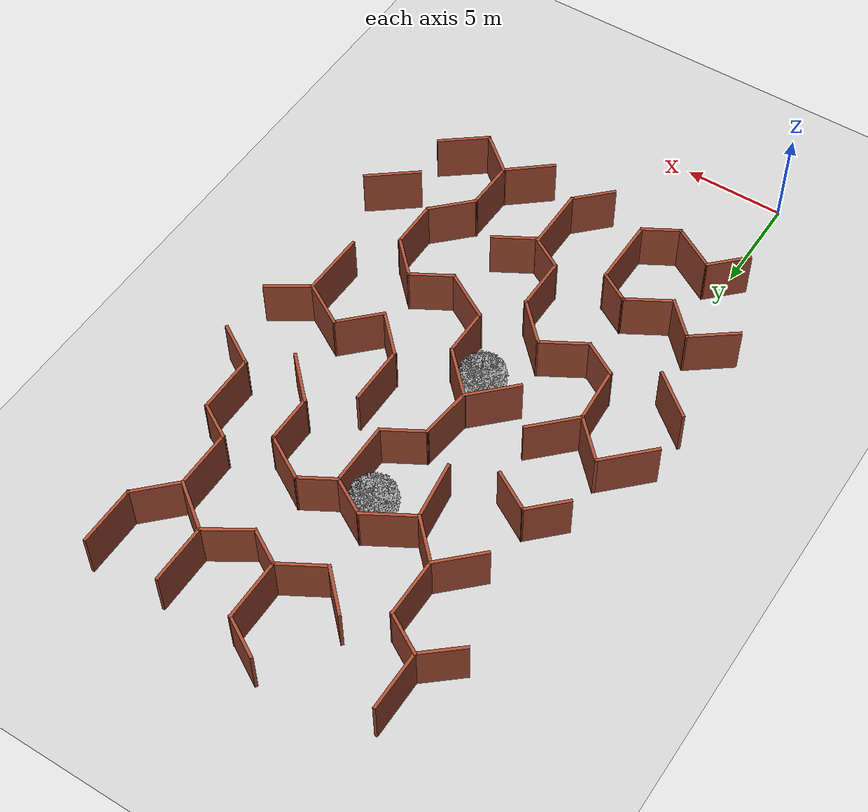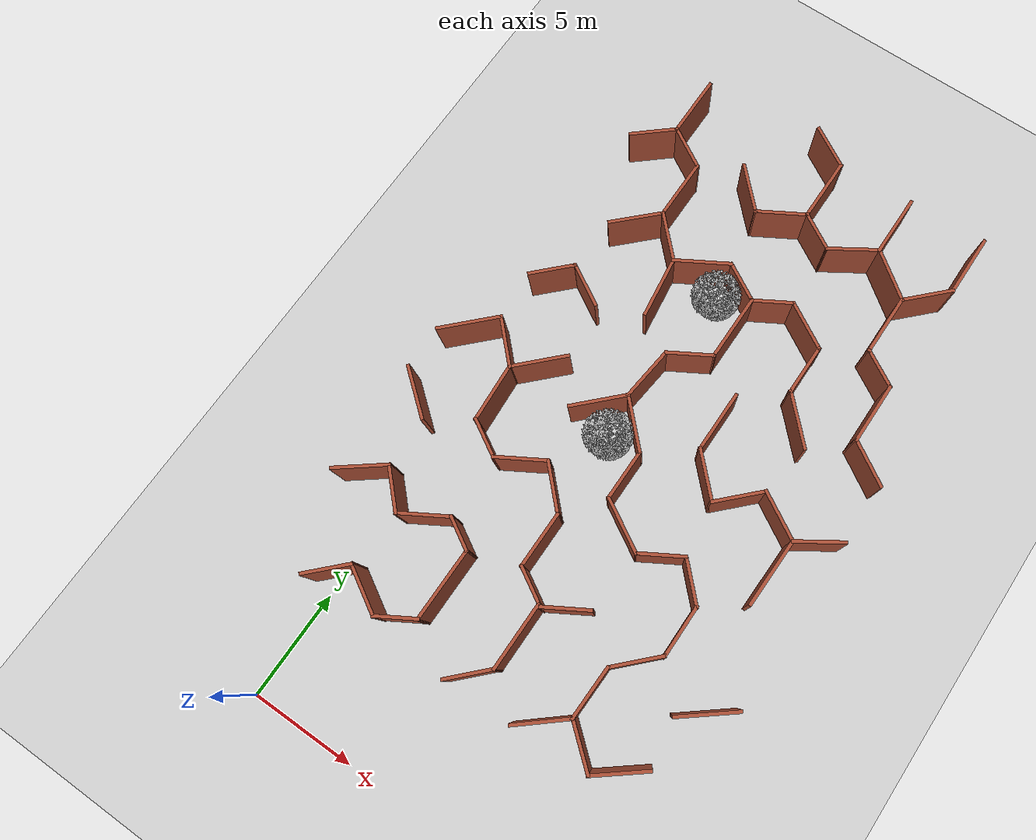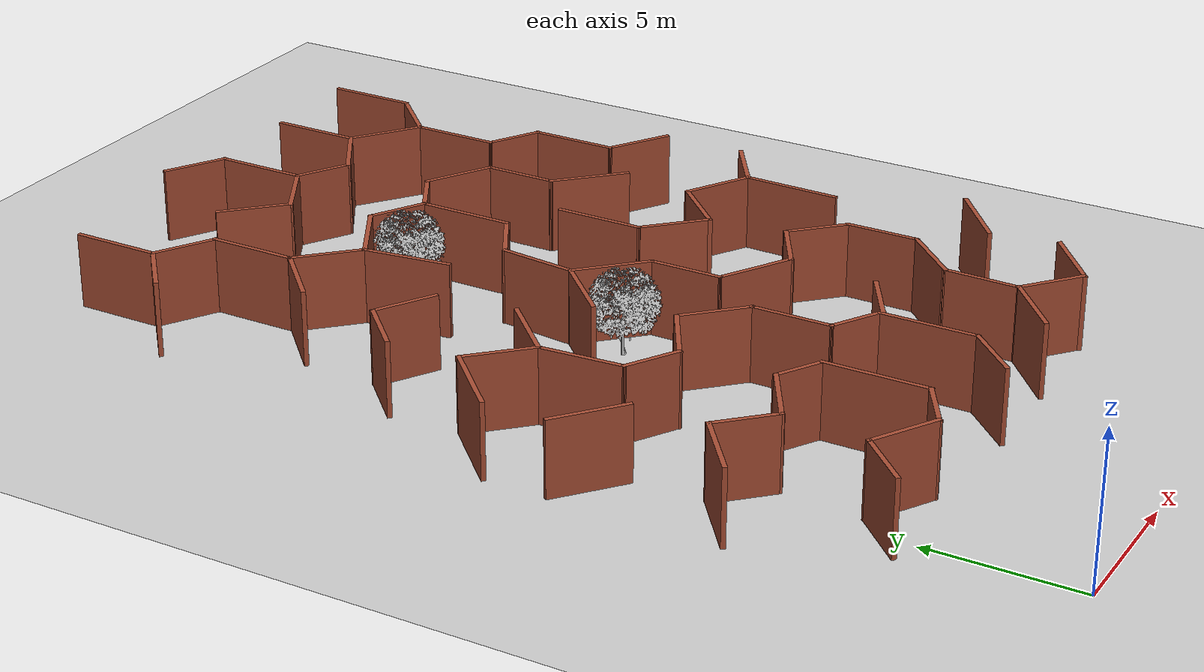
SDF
<sdf version="1.6">
 <world name="default">
  <model name="maze_rect_3">
   <pose>4e-06 -9.9e-05 0 0 -0 1.57001</pose>
   <link name="Wall_172">
    <collision name="Wall_172_Collision">
     <geometry><box><size>2.82454 0.15 2.5</size></box></geometry>
     <pose>0 0 1.25 0 -0 0</pose>
    </collision>
    <visual name="Wall_172_Visual">
     <pose>0 0 1.25 0 -0 0</pose>
     <geometry><box><size>2.82454 0.15 2.5</size></box></geometry>
     <material>
      <script><uri>file://media/materials/scripts/gazebo.material</uri><name>Gazebo/Bricks</name></script>
      <ambient>1 1 1 1</ambient>
     </material>
     <meta><layer>0</layer></meta>
    </visual>
    <pose>10.0301 -16.0891 0 0 -0 -0.90341</pose>
   </link>
   <link name="Wall_174">
    <collision name="Wall_174_Collision">
     <geometry><box><size>3 0.15 2.5</size></box></geometry>
     <pose>0 0 1.25 0 -0 0</pose>
    </collision>
    <visual name="Wall_174_Visual">
     <pose>0 0 1.25 0 -0 0</pose>
     <geometry><box><size>3 0.15 2.5</size></box></geometry>
     <material>
      <script><uri>file://media/materials/scripts/gazebo.material</uri><name>Gazebo/Bricks</name></script>
      <ambient>1 1 1 1</ambient>
     </material>
     <meta><layer>0</layer></meta>
    </visual>
    <pose>20.4205 -9.90743 0 0 -0 3.14159</pose>
   </link>
   <link name="Wall_175">
    <collision name="Wall_175_Collision">
     <geometry><box><size>2.5 0.15 2.5</size></box></geometry>
     <pose>0 0 1.25 0 -0 0</pose>
    </collision>
    <visual name="Wall_175_Visual">
     <pose>0 0 1.25 0 -0 0</pose>
     <geometry><box><size>2.5 0.15 2.5</size></box></geometry>
     <material>
      <script><uri>file://media/materials/scripts/gazebo.material</uri><name>Gazebo/Bricks</name></script>
      <ambient>1 1 1 1</ambient>
     </material>
     <meta><layer>0</layer></meta>
    </visual>
    <pose>18.1647 -10.7383 0 0 -0 -2.35619</pose>
   </link>
   <link name="Wall_176">
    <collision name="Wall_176_Collision">
     <geometry><box><size>2.5 0.15 2.5</size></box></geometry>
     <pose>0 0 1.25 0 -0 0</pose>
    </collision>
    <visual name="Wall_176_Visual">
     <pose>0 0 1.25 0 -0 0</pose>
     <geometry><box><size>2.5 0.15 2.5</size></box></geometry>
     <material>
      <script><uri>file://media/materials/scripts/gazebo.material</uri><name>Gazebo/Bricks</name></script>
      <ambient>1 1 1 1</ambient>
     </material>
     <meta><layer>0</layer></meta>
    </visual>
    <pose>18.1647 -12.4 0 0 -0 -0.785398</pose>
   </link>
   <link name="Wall_177">
    <collision name="Wall_177_Collision">
     <geometry><box><size>2.5 0.15 2.5</size></box></geometry>
     <pose>0 0 1.25 0 -0 0</pose>
    </collision>
    <visual name="Wall_177_Visual">
     <pose>0 0 1.25 0 -0 0</pose>
     <geometry><box><size>2.5 0.15 2.5</size></box></geometry>
     <material>
      <script><uri>file://media/materials/scripts/gazebo.material</uri><name>Gazebo/Bricks</name></script>
      <ambient>1 1 1 1</ambient>
     </material>
     <meta><layer>0</layer></meta>
    </visual>
    <pose>18.408 -14.2484 0 0 -0 -2.0944</pose>
   </link>
   <link name="Wall_178">
    <collision name="Wall_178_Collision">
     <geometry><box><size>2.37866 0.15 2.5</size></box></geometry>
     <pose>0 0 1.25 0 -0 0</pose>
    </collision>
    <visual name="Wall_178_Visual">
     <pose>0 0 1.25 0 -0 0</pose>
     <geometry><box><size>2.37866 0.15 2.5</size></box></geometry>
     <material>
      <script><uri>file://media/materials/scripts/gazebo.material</uri><name>Gazebo/Bricks</name></script>
      <ambient>1 1 1 1</ambient>
     </material>
     <meta><layer>0</layer></meta>
    </visual>
    <pose>18.4241 -16.2027 0 0 -0 -0.998415</pose>
   </link>
   <link name="Wall_180">
    <collision name="Wall_180_Collision">
     <geometry><box><size>3.32014 0.15 2.5</size></box></geometry>
     <pose>0 0 1.25 0 -0 0</pose>
    </collision>
    <visual name="Wall_180_Visual">
     <pose>0 0 1.25 0 -0 0</pose>
     <geometry><box><size>3.32014 0.15 2.5</size></box></geometry>
     <material>
      <script><uri>file://media/materials/scripts/gazebo.material</uri><name>Gazebo/Bricks</name></script>
      <ambient>1 1 1 1</ambient>
     </material>
     <meta><layer>0</layer></meta>
    </visual>
    <pose>16.2358 -15.2317 0 0 -0 -0.021629</pose>
   </link>
   <link name="Wall_182">
    <collision name="Wall_182_Collision">
     <geometry><box><size>2.62796 0.15 2.5</size></box></geometry>
     <pose>0 0 1.25 0 -0 0</pose>
    </collision>
    <visual name="Wall_182_Visual">
     <pose>0 0 1.25 0 -0 0</pose>
     <geometry><box><size>2.62796 0.15 2.5</size></box></geometry>
     <material>
      <script><uri>file://media/materials/scripts/gazebo.material</uri><name>Gazebo/Bricks</name></script>
      <ambient>1 1 1 1</ambient>
     </material>
     <meta><layer>0</layer></meta>
    </visual>
    <pose>6.07983 -10.7544 0 0 -0 -0.877305</pose>
   </link>
   <link name="Wall_183">
    <collision name="Wall_183_Collision">
     <geometry><box><size>2.3979 0.15 2.5</size></box></geometry>
     <pose>0 0 1.25 0 -0 0</pose>
    </collision>
    <visual name="Wall_183_Visual">
     <pose>0 0 1.25 0 -0 0</pose>
     <geometry><box><size>2.3979 0.15 2.5</size></box></geometry>
     <material>
      <script><uri>file://media/materials/scripts/gazebo.material</uri><name>Gazebo/Bricks</name></script>
      <ambient>1 1 1 1</ambient>
     </material>
     <meta><layer>0</layer></meta>
    </visual>
    <pose>6.17943 -12.5741 0 0 -0 -2.26074</pose>
   </link>
   <link name="Wall_188">
    <collision name="Wall_188_Collision">
     <geometry><box><size>2.64871 0.15 2.5</size></box></geometry>
     <pose>0 0 1.25 0 -0 0</pose>
    </collision>
    <visual name="Wall_188_Visual">
     <pose>0 0 1.25 0 -0 0</pose>
     <geometry><box><size>2.64871 0.15 2.5</size></box></geometry>
     <material>
      <script><uri>file://media/materials/scripts/gazebo.material</uri><name>Gazebo/Bricks</name></script>
      <ambient>1 1 1 1</ambient>
     </material>
     <meta><layer>0</layer></meta>
    </visual>
    <pose>6.21084 -14.425 0 0 -0 2.23465</pose>
   </link>
   <link name="Wall_190">
    <collision name="Wall_190_Collision">
     <geometry><box><size>2.75 0.15 2.5</size></box></geometry>
     <pose>0 0 1.25 0 -0 0</pose>
    </collision>
    <visual name="Wall_190_Visual">
     <pose>0 0 1.25 0 -0 0</pose>
     <geometry><box><size>2.75 0.15 2.5</size></box></geometry>
     <material>
      <script><uri>file://media/materials/scripts/gazebo.material</uri><name>Gazebo/Bricks</name></script>
      <ambient>1 1 1 1</ambient>
     </material>
     <meta><layer>0</layer></meta>
    </visual>
    <pose>18.3212 -5.11347 0 0 -0 -0.785398</pose>
   </link>
   <link name="Wall_191">
    <collision name="Wall_191_Collision">
     <geometry><box><size>2.75 0.15 2.5</size></box></geometry>
     <pose>0 0 1.25 0 -0 0</pose>
    </collision>
    <visual name="Wall_191_Visual">
     <pose>0 0 1.25 0 -0 0</pose>
     <geometry><box><size>2.75 0.15 2.5</size></box></geometry>
     <material>
      <script><uri>file://media/materials/scripts/gazebo.material</uri><name>Gazebo/Bricks</name></script>
      <ambient>1 1 1 1</ambient>
     </material>
     <meta><layer>0</layer></meta>
    </visual>
    <pose>18.3212 -6.95194 0 0 -0 -2.35619</pose>
   </link>
   <link name="Wall_192">
    <collision name="Wall_192_Collision">
     <geometry><box><size>2.5 0.15 2.5</size></box></geometry>
     <pose>0 0 1.25 0 -0 0</pose>
    </collision>
    <visual name="Wall_192_Visual">
     <pose>0 0 1.25 0 -0 0</pose>
     <geometry><box><size>2.5 0.15 2.5</size></box></geometry>
     <material>
      <script><uri>file://media/materials/scripts/gazebo.material</uri><name>Gazebo/Bricks</name></script>
      <ambient>1 1 1 1</ambient>
     </material>
     <meta><layer>0</layer></meta>
    </visual>
    <pose>16.2269 -7.87118 0 0 -0 3.14159</pose>
   </link>
   <link name="Wall_193">
    <collision name="Wall_193_Collision">
     <geometry><box><size>2.75 0.15 2.5</size></box></geometry>
     <pose>0 0 1.25 0 -0 0</pose>
    </collision>
    <visual name="Wall_193_Visual">
     <pose>0 0 1.25 0 -0 0</pose>
     <geometry><box><size>2.75 0.15 2.5</size></box></geometry>
     <material>
      <script><uri>file://media/materials/scripts/gazebo.material</uri><name>Gazebo/Bricks</name></script>
      <ambient>1 1 1 1</ambient>
     </material>
     <meta><layer>0</layer></meta>
    </visual>
    <pose>14.4019 -8.99702 0 0 -0 -2.0944</pose>
   </link>
   <link name="Wall_194">
    <collision name="Wall_194_Collision">
     <geometry><box><size>2.25 0.15 2.5</size></box></geometry>
     <pose>0 0 1.25 0 -0 0</pose>
    </collision>
    <visual name="Wall_194_Visual">
     <pose>0 0 1.25 0 -0 0</pose>
     <geometry><box><size>2.25 0.15 2.5</size></box></geometry>
     <material>
      <script><uri>file://media/materials/scripts/gazebo.material</uri><name>Gazebo/Bricks</name></script>
      <ambient>1 1 1 1</ambient>
     </material>
     <meta><layer>0</layer></meta>
    </visual>
    <pose>14.2769 -11.0322 0 0 -0 -1.0472</pose>
   </link>
   <link name="Wall_195">
    <collision name="Wall_195_Collision">
     <geometry><box><size>2.25 0.15 2.5</size></box></geometry>
     <pose>0 0 1.25 0 -0 0</pose>
    </collision>
    <visual name="Wall_195_Visual">
     <pose>0 0 1.25 0 -0 0</pose>
     <geometry><box><size>2.25 0.15 2.5</size></box></geometry>
     <material>
      <script><uri>file://media/materials/scripts/gazebo.material</uri><name>Gazebo/Bricks</name></script>
      <ambient>1 1 1 1</ambient>
     </material>
     <meta><layer>0</layer></meta>
    </visual>
    <pose>14.0595 -12.684 0 0 -0 -2.35619</pose>
   </link>
   <link name="Wall_196">
    <collision name="Wall_196_Collision">
     <geometry><box><size>2.5 0.15 2.5</size></box></geometry>
     <pose>0 0 1.25 0 -0 0</pose>
    </collision>
    <visual name="Wall_196_Visual">
     <pose>0 0 1.25 0 -0 0</pose>
     <geometry><box><size>2.5 0.15 2.5</size></box></geometry>
     <material>
      <script><uri>file://media/materials/scripts/gazebo.material</uri><name>Gazebo/Bricks</name></script>
      <ambient>1 1 1 1</ambient>
     </material>
     <meta><layer>0</layer></meta>
    </visual>
    <pose>12.142 -13.4264 0 0 -0 3.14159</pose>
   </link>
   <link name="Wall_197">
    <collision name="Wall_197_Collision">
     <geometry><box><size>2.5 0.15 2.5</size></box></geometry>
     <pose>0 0 1.25 0 -0 0</pose>
    </collision>
    <visual name="Wall_197_Visual">
     <pose>0 0 1.25 0 -0 0</pose>
     <geometry><box><size>2.5 0.15 2.5</size></box></geometry>
     <material>
      <script><uri>file://media/materials/scripts/gazebo.material</uri><name>Gazebo/Bricks</name></script>
      <ambient>1 1 1 1</ambient>
     </material>
     <meta><layer>0</layer></meta>
    </visual>
    <pose>10.1362 -12.5956 0 0 -0 2.35619</pose>
   </link>
   <link name="Wall_198">
    <collision name="Wall_198_Collision">
     <geometry><box><size>2.58418 0.15 2.5</size></box></geometry>
     <pose>0 0 1.25 0 -0 0</pose>
    </collision>
    <visual name="Wall_198_Visual">
     <pose>0 0 1.25 0 -0 0</pose>
     <geometry><box><size>2.58418 0.15 2.5</size></box></geometry>
     <material>
      <script><uri>file://media/materials/scripts/gazebo.material</uri><name>Gazebo/Bricks</name></script>
      <ambient>1 1 1 1</ambient>
     </material>
     <meta><layer>0</layer></meta>
    </visual>
    <pose>8.08856 -11.736 0 0 -0 3.11797</pose>
   </link>
   <link name="Wall_200">
    <collision name="Wall_200_Collision">
     <geometry><box><size>2.75 0.15 2.5</size></box></geometry>
     <pose>0 0 1.25 0 -0 0</pose>
    </collision>
    <visual name="Wall_200_Visual">
     <pose>0 0 1.25 0 -0 0</pose>
     <geometry><box><size>2.75 0.15 2.5</size></box></geometry>
     <material>
      <script><uri>file://media/materials/scripts/gazebo.material</uri><name>Gazebo/Bricks</name></script>
      <ambient>1 1 1 1</ambient>
     </material>
     <meta><layer>0</layer></meta>
    </visual>
    <pose>22.3945 -12.6912 0 0 -0 0.785398</pose>
   </link>
   <link name="Wall_201">
    <collision name="Wall_201_Collision">
     <geometry><box><size>2.5 0.15 2.5</size></box></geometry>
     <pose>0 0 1.25 0 -0 0</pose>
    </collision>
    <visual name="Wall_201_Visual">
     <pose>0 0 1.25 0 -0 0</pose>
     <geometry><box><size>2.5 0.15 2.5</size></box></geometry>
     <material>
      <script><uri>file://media/materials/scripts/gazebo.material</uri><name>Gazebo/Bricks</name></script>
      <ambient>1 1 1 1</ambient>
     </material>
     <meta><layer>0</layer></meta>
    </visual>
    <pose>24.4887 -11.772 0 0 -0 0</pose>
   </link>
   <link name="Wall_202">
    <collision name="Wall_202_Collision">
     <geometry><box><size>2.5 0.15 2.5</size></box></geometry>
     <pose>0 0 1.25 0 -0 0</pose>
    </collision>
    <visual name="Wall_202_Visual">
     <pose>0 0 1.25 0 -0 0</pose>
     <geometry><box><size>2.5 0.15 2.5</size></box></geometry>
     <material>
      <script><uri>file://media/materials/scripts/gazebo.material</uri><name>Gazebo/Bricks</name></script>
      <ambient>1 1 1 1</ambient>
     </material>
     <meta><layer>0</layer></meta>
    </visual>
    <pose>26.2512 -10.7544 0 0 -0 1.0472</pose>
   </link>
   <link name="Wall_203">
    <collision name="Wall_203_Collision">
     <geometry><box><size>2 0.15 2.5</size></box></geometry>
     <pose>0 0 1.25 0 -0 0</pose>
    </collision>
    <visual name="Wall_203_Visual">
     <pose>0 0 1.25 0 -0 0</pose>
     <geometry><box><size>2 0.15 2.5</size></box></geometry>
     <material>
      <script><uri>file://media/materials/scripts/gazebo.material</uri><name>Gazebo/Bricks</name></script>
      <ambient>1 1 1 1</ambient>
     </material>
     <meta><layer>0</layer></meta>
    </visual>
    <pose>26.3762 -8.93572 0 0 -0 2.0944</pose>
   </link>
   <link name="Wall_204">
    <collision name="Wall_204_Collision">
     <geometry><box><size>3.25 0.15 2.5</size></box></geometry>
     <pose>0 0 1.25 0 -0 0</pose>
    </collision>
    <visual name="Wall_204_Visual">
     <pose>0 0 1.25 0 -0 0</pose>
     <geometry><box><size>3.25 0.15 2.5</size></box></geometry>
     <material>
      <script><uri>file://media/materials/scripts/gazebo.material</uri><name>Gazebo/Bricks</name></script>
      <ambient>1 1 1 1</ambient>
     </material>
     <meta><layer>0</layer></meta>
    </visual>
    <pose>24.3637 -8.13464 0 0 -0 3.14159</pose>
   </link>
   <link name="Wall_205">
    <collision name="Wall_205_Collision">
     <geometry><box><size>2.25 0.15 2.5</size></box></geometry>
     <pose>0 0 1.25 0 -0 0</pose>
    </collision>
    <visual name="Wall_205_Visual">
     <pose>0 0 1.25 0 -0 0</pose>
     <geometry><box><size>2.25 0.15 2.5</size></box></geometry>
     <material>
      <script><uri>file://media/materials/scripts/gazebo.material</uri><name>Gazebo/Bricks</name></script>
      <ambient>1 1 1 1</ambient>
     </material>
     <meta><layer>0</layer></meta>
    </visual>
    <pose>22.2887 -7.22532 0 0 -0 2.0944</pose>
   </link>
   <link name="Wall_206">
    <collision name="Wall_206_Collision">
     <geometry><box><size>2.68915 0.15 2.5</size></box></geometry>
     <pose>0 0 1.25 0 -0 0</pose>
    </collision>
    <visual name="Wall_206_Visual">
     <pose>0 0 1.25 0 -0 0</pose>
     <geometry><box><size>2.68915 0.15 2.5</size></box></geometry>
     <material>
      <script><uri>file://media/materials/scripts/gazebo.material</uri><name>Gazebo/Bricks</name></script>
      <ambient>1 1 1 1</ambient>
     </material>
     <meta><layer>0</layer></meta>
    </visual>
    <pose>20.5021 -6.17435 0 0 -0 3.02979</pose>
   </link>
   <link name="Wall_208">
    <collision name="Wall_208_Collision">
     <geometry><box><size>3 0.15 2.5</size></box></geometry>
     <pose>0 0 1.25 0 -0 0</pose>
    </collision>
    <visual name="Wall_208_Visual">
     <pose>0 0 1.25 0 -0 0</pose>
     <geometry><box><size>3 0.15 2.5</size></box></geometry>
     <material>
      <script><uri>file://media/materials/scripts/gazebo.material</uri><name>Gazebo/Bricks</name></script>
      <ambient>1 1 1 1</ambient>
     </material>
     <meta><layer>0</layer></meta>
    </visual>
    <pose>32.7462 -15.3032 0 0 -0 3.14159</pose>
   </link>
   <link name="Wall_209">
    <collision name="Wall_209_Collision">
     <geometry><box><size>2.5 0.15 2.5</size></box></geometry>
     <pose>0 0 1.25 0 -0 0</pose>
    </collision>
    <visual name="Wall_209_Visual">
     <pose>0 0 1.25 0 -0 0</pose>
     <geometry><box><size>2.5 0.15 2.5</size></box></geometry>
     <material>
      <script><uri>file://media/materials/scripts/gazebo.material</uri><name>Gazebo/Bricks</name></script>
      <ambient>1 1 1 1</ambient>
     </material>
     <meta><layer>0</layer></meta>
    </visual>
    <pose>30.4904 -14.4724 0 0 -0 2.35619</pose>
   </link>
   <link name="Wall_210">
    <collision name="Wall_210_Collision">
     <geometry><box><size>3 0.15 2.5</size></box></geometry>
     <pose>0 0 1.25 0 -0 0</pose>
    </collision>
    <visual name="Wall_210_Visual">
     <pose>0 0 1.25 0 -0 0</pose>
     <geometry><box><size>3 0.15 2.5</size></box></geometry>
     <material>
      <script><uri>file://media/materials/scripts/gazebo.material</uri><name>Gazebo/Bricks</name></script>
      <ambient>1 1 1 1</ambient>
     </material>
     <meta><layer>0</layer></meta>
    </visual>
    <pose>28.2345 -13.6415 0 0 -0 3.14159</pose>
   </link>
   <link name="Wall_211">
    <collision name="Wall_211_Collision">
     <geometry><box><size>2 0.15 2.5</size></box></geometry>
     <pose>0 0 1.25 0 -0 0</pose>
    </collision>
    <visual name="Wall_211_Visual">
     <pose>0 0 1.25 0 -0 0</pose>
     <geometry><box><size>2 0.15 2.5</size></box></geometry>
     <material>
      <script><uri>file://media/materials/scripts/gazebo.material</uri><name>Gazebo/Bricks</name></script>
      <ambient>1 1 1 1</ambient>
     </material>
     <meta><layer>0</layer></meta>
    </visual>
    <pose>26.347 -14.4426 0 0 -0 -2.0944</pose>
   </link>
   <link name="Wall_212">
    <collision name="Wall_212_Collision">
     <geometry><box><size>3 0.15 2.5</size></box></geometry>
     <pose>0 0 1.25 0 -0 0</pose>
    </collision>
    <visual name="Wall_212_Visual">
     <pose>0 0 1.25 0 -0 0</pose>
     <geometry><box><size>3 0.15 2.5</size></box></geometry>
     <material>
      <script><uri>file://media/materials/scripts/gazebo.material</uri><name>Gazebo/Bricks</name></script>
      <ambient>1 1 1 1</ambient>
     </material>
     <meta><layer>0</layer></meta>
    </visual>
    <pose>24.4595 -15.2437 0 0 -0 3.14159</pose>
   </link>
   <link name="Wall_213">
    <collision name="Wall_213_Collision">
     <geometry><box><size>2.37087 0.15 2.5</size></box></geometry>
     <pose>0 0 1.25 0 -0 0</pose>
    </collision>
    <visual name="Wall_213_Visual">
     <pose>0 0 1.25 0 -0 0</pose>
     <geometry><box><size>2.37087 0.15 2.5</size></box></geometry>
     <material>
      <script><uri>file://media/materials/scripts/gazebo.material</uri><name>Gazebo/Bricks</name></script>
      <ambient>1 1 1 1</ambient>
     </material>
     <meta><layer>0</layer></meta>
    </visual>
    <pose>22.4561 -16.1915 0 0 -0 -2.11872</pose>
   </link>
   <link name="Wall_226">
    <collision name="Wall_226_Collision">
     <geometry><box><size>3 0.15 2.5</size></box></geometry>
     <pose>0 0 1.25 0 -0 0</pose>
    </collision>
    <visual name="Wall_226_Visual">
     <pose>0 0 1.25 0 -0 0</pose>
     <geometry><box><size>3 0.15 2.5</size></box></geometry>
     <material>
      <script><uri>file://media/materials/scripts/gazebo.material</uri><name>Gazebo/Bricks</name></script>
      <ambient>1 1 1 1</ambient>
     </material>
     <meta><layer>0</layer></meta>
    </visual>
    <pose>32.5875 -11.6002 0 0 -0 3.14159</pose>
   </link>
   <link name="Wall_227">
    <collision name="Wall_227_Collision">
     <geometry><box><size>2.68494 0.15 2.5</size></box></geometry>
     <pose>0 0 1.25 0 -0 0</pose>
    </collision>
    <visual name="Wall_227_Visual">
     <pose>0 0 1.25 0 -0 0</pose>
     <geometry><box><size>2.68494 0.15 2.5</size></box></geometry>
     <material>
      <script><uri>file://media/materials/scripts/gazebo.material</uri><name>Gazebo/Bricks</name></script>
      <ambient>1 1 1 1</ambient>
     </material>
     <meta><layer>0</layer></meta>
    </visual>
    <pose>30.411 -12.6209 0 0 -0 -2.20547</pose>
   </link>
   <link name="Wall_229">
    <collision name="Wall_229_Collision">
     <geometry><box><size>2.5 0.15 2.5</size></box></geometry>
     <pose>0 0 1.25 0 -0 0</pose>
    </collision>
    <visual name="Wall_229_Visual">
     <pose>0 0 1.25 0 -0 0</pose>
     <geometry><box><size>2.5 0.15 2.5</size></box></geometry>
     <material>
      <script><uri>file://media/materials/scripts/gazebo.material</uri><name>Gazebo/Bricks</name></script>
      <ambient>1 1 1 1</ambient>
     </material>
     <meta><layer>0</layer></meta>
    </visual>
    <pose>30.4838 -5.13088 0 0 -0 -2.35619</pose>
   </link>
   <link name="Wall_230">
    <collision name="Wall_230_Collision">
     <geometry><box><size>2.5 0.15 2.5</size></box></geometry>
     <pose>0 0 1.25 0 -0 0</pose>
    </collision>
    <visual name="Wall_230_Visual">
     <pose>0 0 1.25 0 -0 0</pose>
     <geometry><box><size>2.5 0.15 2.5</size></box></geometry>
     <material>
      <script><uri>file://media/materials/scripts/gazebo.material</uri><name>Gazebo/Bricks</name></script>
      <ambient>1 1 1 1</ambient>
     </material>
     <meta><layer>0</layer></meta>
    </visual>
    <pose>30.2404 -6.97931 0 0 -0 -1.0472</pose>
   </link>
   <link name="Wall_231">
    <collision name="Wall_231_Collision">
     <geometry><box><size>2 0.15 2.5</size></box></geometry>
     <pose>0 0 1.25 0 -0 0</pose>
    </collision>
    <visual name="Wall_231_Visual">
     <pose>0 0 1.25 0 -0 0</pose>
     <geometry><box><size>2 0.15 2.5</size></box></geometry>
     <material>
      <script><uri>file://media/materials/scripts/gazebo.material</uri><name>Gazebo/Bricks</name></script>
      <ambient>1 1 1 1</ambient>
     </material>
     <meta><layer>0</layer></meta>
    </visual>
    <pose>30.3654 -8.79796 0 0 -0 -2.0944</pose>
   </link>
   <link name="Wall_232">
    <collision name="Wall_232_Collision">
     <geometry><box><size>2.51461 0.15 2.5</size></box></geometry>
     <pose>0 0 1.25 0 -0 0</pose>
    </collision>
    <visual name="Wall_232_Visual">
     <pose>0 0 1.25 0 -0 0</pose>
     <geometry><box><size>2.51461 0.15 2.5</size></box></geometry>
     <material>
      <script><uri>file://media/materials/scripts/gazebo.material</uri><name>Gazebo/Bricks</name></script>
      <ambient>1 1 1 1</ambient>
     </material>
     <meta><layer>0</layer></meta>
    </visual>
    <pose>30.5327 -10.5996 0 0 -0 -1.00902</pose>
   </link>
   <link name="Wall_235">
    <collision name="Wall_235_Collision">
     <geometry><box><size>2.25 0.15 2.5</size></box></geometry>
     <pose>0 0 1.25 0 -0 0</pose>
    </collision>
    <visual name="Wall_235_Visual">
     <pose>0 0 1.25 0 -0 0</pose>
     <geometry><box><size>2.25 0.15 2.5</size></box></geometry>
     <material>
      <script><uri>file://media/materials/scripts/gazebo.material</uri><name>Gazebo/Bricks</name></script>
      <ambient>1 1 1 1</ambient>
     </material>
     <meta><layer>0</layer></meta>
    </visual>
    <pose>34.3259 -7.08091 0 0 -0 -2.0944</pose>
   </link>
   <link name="Wall_236">
    <collision name="Wall_236_Collision">
     <geometry><box><size>3.12301 0.15 2.5</size></box></geometry>
     <pose>0 0 1.25 0 -0 0</pose>
    </collision>
    <visual name="Wall_236_Visual">
     <pose>0 0 1.25 0 -0 0</pose>
     <geometry><box><size>3.12301 0.15 2.5</size></box></geometry>
     <material>
      <script><uri>file://media/materials/scripts/gazebo.material</uri><name>Gazebo/Bricks</name></script>
      <ambient>1 1 1 1</ambient>
     </material>
     <meta><layer>0</layer></meta>
    </visual>
    <pose>32.3144 -7.99356 0 0 -0 -3.13936</pose>
   </link>
   <link name="Wall_270">
    <collision name="Wall_270_Collision">
     <geometry><box><size>3 0.15 2.5</size></box></geometry>
     <pose>0 0 1.25 0 -0 0</pose>
    </collision>
    <visual name="Wall_270_Visual">
     <pose>0 0 1.25 0 -0 0</pose>
     <geometry><box><size>3 0.15 2.5</size></box></geometry>
     <material>
      <script><uri>file://media/materials/scripts/gazebo.material</uri><name>Gazebo/Bricks</name></script>
      <ambient>1 1 1 1</ambient>
     </material>
     <meta><layer>0</layer></meta>
    </visual>
    <pose>32.5585 -0.711321 0 0 -0 3.14159</pose>
   </link>
   <link name="Wall_271">
    <collision name="Wall_271_Collision">
     <geometry><box><size>2.25 0.15 2.5</size></box></geometry>
     <pose>0 0 1.25 0 -0 0</pose>
    </collision>
    <visual name="Wall_271_Visual">
     <pose>0 0 1.25 0 -0 0</pose>
     <geometry><box><size>2.25 0.15 2.5</size></box></geometry>
     <material>
      <script><uri>file://media/materials/scripts/gazebo.material</uri><name>Gazebo/Bricks</name></script>
      <ambient>1 1 1 1</ambient>
     </material>
     <meta><layer>0</layer></meta>
    </visual>
    <pose>30.6085 -1.62065 0 0 -0 -2.0944</pose>
   </link>
   <link name="Wall_272">
    <collision name="Wall_272_Collision">
     <geometry><box><size>3 0.15 2.5</size></box></geometry>
     <pose>0 0 1.25 0 -0 0</pose>
    </collision>
    <visual name="Wall_272_Visual">
     <pose>0 0 1.25 0 -0 0</pose>
     <geometry><box><size>3 0.15 2.5</size></box></geometry>
     <material>
      <script><uri>file://media/materials/scripts/gazebo.material</uri><name>Gazebo/Bricks</name></script>
      <ambient>1 1 1 1</ambient>
     </material>
     <meta><layer>0</layer></meta>
    </visual>
    <pose>28.6585 -2.52997 0 0 -0 3.14159</pose>
   </link>
   <link name="Wall_273">
    <collision name="Wall_273_Collision">
     <geometry><box><size>2.5 0.15 2.5</size></box></geometry>
     <pose>0 0 1.25 0 -0 0</pose>
    </collision>
    <visual name="Wall_273_Visual">
     <pose>0 0 1.25 0 -0 0</pose>
     <geometry><box><size>2.5 0.15 2.5</size></box></geometry>
     <material>
      <script><uri>file://media/materials/scripts/gazebo.material</uri><name>Gazebo/Bricks</name></script>
      <ambient>1 1 1 1</ambient>
     </material>
     <meta><layer>0</layer></meta>
    </visual>
    <pose>26.4026 -3.36082 0 0 -0 -2.35619</pose>
   </link>
   <link name="Wall_274">
    <collision name="Wall_274_Collision">
     <geometry><box><size>2.75 0.15 2.5</size></box></geometry>
     <pose>0 0 1.25 0 -0 0</pose>
    </collision>
    <visual name="Wall_274_Visual">
     <pose>0 0 1.25 0 -0 0</pose>
     <geometry><box><size>2.75 0.15 2.5</size></box></geometry>
     <material>
      <script><uri>file://media/materials/scripts/gazebo.material</uri><name>Gazebo/Bricks</name></script>
      <ambient>1 1 1 1</ambient>
     </material>
     <meta><layer>0</layer></meta>
    </visual>
    <pose>26.2218 -5.31751 0 0 -0 -1.0472</pose>
   </link>
   <link name="Wall_275">
    <collision name="Wall_275_Collision">
     <geometry><box><size>2.09381 0.15 2.5</size></box></geometry>
     <pose>0 0 1.25 0 -0 0</pose>
    </collision>
    <visual name="Wall_275_Visual">
     <pose>0 0 1.25 0 -0 0</pose>
     <geometry><box><size>2.09381 0.15 2.5</size></box></geometry>
     <material>
      <script><uri>file://media/materials/scripts/gazebo.material</uri><name>Gazebo/Bricks</name></script>
      <ambient>1 1 1 1</ambient>
     </material>
     <meta><layer>0</layer></meta>
    </visual>
    <pose>26.3928 -7.28899 0 0 -0 -2.0862</pose>
   </link>
   <link name="Wall_277">
    <collision name="Wall_277_Collision">
     <geometry><box><size>3.00143 0.15 2.5</size></box></geometry>
     <pose>0 0 1.25 0 -0 0</pose>
    </collision>
    <visual name="Wall_277_Visual">
     <pose>0 0 1.25 0 -0 0</pose>
     <geometry><box><size>3.00143 0.15 2.5</size></box></geometry>
     <material>
      <script><uri>file://media/materials/scripts/gazebo.material</uri><name>Gazebo/Bricks</name></script>
      <ambient>1 1 1 1</ambient>
     </material>
     <meta><layer>0</layer></meta>
    </visual>
    <pose>24.1583 -4.3781 0 0 -0 0.131135</pose>
   </link>
   <link name="Wall_279">
    <collision name="Wall_279_Collision">
     <geometry><box><size>2.63356 0.15 2.5</size></box></geometry>
     <pose>0 0 1.25 0 -0 0</pose>
    </collision>
    <visual name="Wall_279_Visual">
     <pose>0 0 1.25 0 -0 0</pose>
     <geometry><box><size>2.63356 0.15 2.5</size></box></geometry>
     <material>
      <script><uri>file://media/materials/scripts/gazebo.material</uri><name>Gazebo/Bricks</name></script>
      <ambient>1 1 1 1</ambient>
     </material>
     <meta><layer>0</layer></meta>
    </visual>
    <pose>26.3646 -1.64285 0 0 -0 -0.795761</pose>
   </link>
   <link name="Wall_281">
    <collision name="Wall_281_Collision">
     <geometry><box><size>2.31648 0.15 2.5</size></box></geometry>
     <pose>0 0 1.25 0 -0 0</pose>
    </collision>
    <visual name="Wall_281_Visual">
     <pose>0 0 1.25 0 -0 0</pose>
     <geometry><box><size>2.31648 0.15 2.5</size></box></geometry>
     <material>
      <script><uri>file://media/materials/scripts/gazebo.material</uri><name>Gazebo/Bricks</name></script>
      <ambient>1 1 1 1</ambient>
     </material>
     <meta><layer>0</layer></meta>
    </visual>
    <pose>30.4306 0.112876 0 0 -0 -0.864644</pose>
   </link>
   <link name="Wall_358">
    <collision name="Wall_358_Collision">
     <geometry><box><size>2.25 0.15 2.5</size></box></geometry>
     <pose>0 0 1.25 0 -0 0</pose>
    </collision>
    <visual name="Wall_358_Visual">
     <pose>0 0 1.25 0 -0 0</pose>
     <geometry><box><size>2.25 0.15 2.5</size></box></geometry>
     <material>
      <script><uri>file://media/materials/scripts/gazebo.material</uri><name>Gazebo/Bricks</name></script>
      <ambient>1 1 1 1</ambient>
     </material>
     <meta><layer>0</layer></meta>
    </visual>
    <pose>22.3895 -1.5881 0 0 -0 1.0472</pose>
   </link>
   <link name="Wall_359">
    <collision name="Wall_359_Collision">
     <geometry><box><size>2.25 0.15 2.5</size></box></geometry>
     <pose>0 0 1.25 0 -0 0</pose>
    </collision>
    <visual name="Wall_359_Visual">
     <pose>0 0 1.25 0 -0 0</pose>
     <geometry><box><size>2.25 0.15 2.5</size></box></geometry>
     <material>
      <script><uri>file://media/materials/scripts/gazebo.material</uri><name>Gazebo/Bricks</name></script>
      <ambient>1 1 1 1</ambient>
     </material>
     <meta><layer>0</layer></meta>
    </visual>
    <pose>22.172 0.063689 0 0 -0 2.35619</pose>
   </link>
   <link name="Wall_362">
    <collision name="Wall_362_Collision">
     <geometry><box><size>2.75 0.15 2.5</size></box></geometry>
     <pose>0 0 1.25 0 -0 0</pose>
    </collision>
    <visual name="Wall_362_Visual">
     <pose>0 0 1.25 0 -0 0</pose>
     <geometry><box><size>2.75 0.15 2.5</size></box></geometry>
     <material>
      <script><uri>file://media/materials/scripts/gazebo.material</uri><name>Gazebo/Bricks</name></script>
      <ambient>1 1 1 1</ambient>
     </material>
     <meta><layer>0</layer></meta>
    </visual>
    <pose>18.3294 -1.9432 0 0 -0 2.35619</pose>
   </link>
   <link name="Wall_363">
    <collision name="Wall_363_Collision">
     <geometry><box><size>2.5 0.15 2.5</size></box></geometry>
     <pose>0 0 1.25 0 -0 0</pose>
    </collision>
    <visual name="Wall_363_Visual">
     <pose>0 0 1.25 0 -0 0</pose>
     <geometry><box><size>2.5 0.15 2.5</size></box></geometry>
     <material>
      <script><uri>file://media/materials/scripts/gazebo.material</uri><name>Gazebo/Bricks</name></script>
      <ambient>1 1 1 1</ambient>
     </material>
     <meta><layer>0</layer></meta>
    </visual>
    <pose>18.241 -0.193108 0 0 -0 0.785398</pose>
   </link>
   <link name="Wall_364">
    <collision name="Wall_364_Collision">
     <geometry><box><size>3 0.15 2.5</size></box></geometry>
     <pose>0 0 1.25 0 -0 0</pose>
    </collision>
    <visual name="Wall_364_Visual">
     <pose>0 0 1.25 0 -0 0</pose>
     <geometry><box><size>3 0.15 2.5</size></box></geometry>
     <material>
      <script><uri>file://media/materials/scripts/gazebo.material</uri><name>Gazebo/Bricks</name></script>
      <ambient>1 1 1 1</ambient>
     </material>
     <meta><layer>0</layer></meta>
    </visual>
    <pose>18.0642 1.64537 0 0 -0 2.35619</pose>
   </link>
   <link name="Wall_378">
    <collision name="Wall_378_Collision">
     <geometry><box><size>2.6212 0.15 2.5</size></box></geometry>
     <pose>0 0 1.25 0 -0 0</pose>
    </collision>
    <visual name="Wall_378_Visual">
     <pose>0 0 1.25 0 -0 0</pose>
     <geometry><box><size>2.6212 0.15 2.5</size></box></geometry>
     <material>
      <script><uri>file://media/materials/scripts/gazebo.material</uri><name>Gazebo/Bricks</name></script>
      <ambient>1 1 1 1</ambient>
     </material>
     <meta><layer>0</layer></meta>
    </visual>
    <pose>14.1825 1.68991 0 0 -0 0.893782</pose>
   </link>
   <link name="Wall_380">
    <collision name="Wall_380_Collision">
     <geometry><box><size>2.25 0.15 2.5</size></box></geometry>
     <pose>0 0 1.25 0 -0 0</pose>
    </collision>
    <visual name="Wall_380_Visual">
     <pose>0 0 1.25 0 -0 0</pose>
     <geometry><box><size>2.25 0.15 2.5</size></box></geometry>
     <material>
      <script><uri>file://media/materials/scripts/gazebo.material</uri><name>Gazebo/Bricks</name></script>
      <ambient>1 1 1 1</ambient>
     </material>
     <meta><layer>0</layer></meta>
    </visual>
    <pose>10.2675 -9.00997 0 0 -0 2.0944</pose>
   </link>
   <link name="Wall_381">
    <collision name="Wall_381_Collision">
     <geometry><box><size>2 0.15 2.5</size></box></geometry>
     <pose>0 0 1.25 0 -0 0</pose>
    </collision>
    <visual name="Wall_381_Visual">
     <pose>0 0 1.25 0 -0 0</pose>
     <geometry><box><size>2 0.15 2.5</size></box></geometry>
     <material>
      <script><uri>file://media/materials/scripts/gazebo.material</uri><name>Gazebo/Bricks</name></script>
      <ambient>1 1 1 1</ambient>
     </material>
     <meta><layer>0</layer></meta>
    </visual>
    <pose>10.205 -7.29957 0 0 -0 1.0472</pose>
   </link>
   <link name="Wall_382">
    <collision name="Wall_382_Collision">
     <geometry><box><size>2.75 0.15 2.5</size></box></geometry>
     <pose>0 0 1.25 0 -0 0</pose>
    </collision>
    <visual name="Wall_382_Visual">
     <pose>0 0 1.25 0 -0 0</pose>
     <geometry><box><size>2.75 0.15 2.5</size></box></geometry>
     <material>
      <script><uri>file://media/materials/scripts/gazebo.material</uri><name>Gazebo/Bricks</name></script>
      <ambient>1 1 1 1</ambient>
     </material>
     <meta><layer>0</layer></meta>
    </visual>
    <pose>11.9675 -6.4985 0 0 -0 0</pose>
   </link>
   <link name="Wall_383">
    <collision name="Wall_383_Collision">
     <geometry><box><size>2.5 0.15 2.5</size></box></geometry>
     <pose>0 0 1.25 0 -0 0</pose>
    </collision>
    <visual name="Wall_383_Visual">
     <pose>0 0 1.25 0 -0 0</pose>
     <geometry><box><size>2.5 0.15 2.5</size></box></geometry>
     <material>
      <script><uri>file://media/materials/scripts/gazebo.material</uri><name>Gazebo/Bricks</name></script>
      <ambient>1 1 1 1</ambient>
     </material>
     <meta><layer>0</layer></meta>
    </visual>
    <pose>14.0984 -5.66765 0 0 -0 0.785398</pose>
   </link>
   <link name="Wall_384">
    <collision name="Wall_384_Collision">
     <geometry><box><size>2.5 0.15 2.5</size></box></geometry>
     <pose>0 0 1.25 0 -0 0</pose>
    </collision>
    <visual name="Wall_384_Visual">
     <pose>0 0 1.25 0 -0 0</pose>
     <geometry><box><size>2.5 0.15 2.5</size></box></geometry>
     <material>
      <script><uri>file://media/materials/scripts/gazebo.material</uri><name>Gazebo/Bricks</name></script>
      <ambient>1 1 1 1</ambient>
     </material>
     <meta><layer>0</layer></meta>
    </visual>
    <pose>14.3417 -3.81921 0 0 -0 2.0944</pose>
   </link>
   <link name="Wall_385">
    <collision name="Wall_385_Collision">
     <geometry><box><size>2 0.15 2.5</size></box></geometry>
     <pose>0 0 1.25 0 -0 0</pose>
    </collision>
    <visual name="Wall_385_Visual">
     <pose>0 0 1.25 0 -0 0</pose>
     <geometry><box><size>2 0.15 2.5</size></box></geometry>
     <material>
      <script><uri>file://media/materials/scripts/gazebo.material</uri><name>Gazebo/Bricks</name></script>
      <ambient>1 1 1 1</ambient>
     </material>
     <meta><layer>0</layer></meta>
    </visual>
    <pose>14.2167 -2.00056 0 0 -0 1.0472</pose>
   </link>
   <link name="Wall_386">
    <collision name="Wall_386_Collision">
     <geometry><box><size>2.88652 0.15 2.5</size></box></geometry>
     <pose>0 0 1.25 0 -0 0</pose>
    </collision>
    <visual name="Wall_386_Visual">
     <pose>0 0 1.25 0 -0 0</pose>
     <geometry><box><size>2.88652 0.15 2.5</size></box></geometry>
     <material>
      <script><uri>file://media/materials/scripts/gazebo.material</uri><name>Gazebo/Bricks</name></script>
      <ambient>1 1 1 1</ambient>
     </material>
     <meta><layer>0</layer></meta>
    </visual>
    <pose>16.0447 -1.11172 0 0 -0 0.064187</pose>
   </link>
   <link name="Wall_392">
    <collision name="Wall_392_Collision">
     <geometry><box><size>2.25 0.15 2.5</size></box></geometry>
     <pose>0 0 1.25 0 -0 0</pose>
    </collision>
    <visual name="Wall_392_Visual">
     <pose>0 0 1.25 0 -0 0</pose>
     <geometry><box><size>2.25 0.15 2.5</size></box></geometry>
     <material>
      <script><uri>file://media/materials/scripts/gazebo.material</uri><name>Gazebo/Bricks</name></script>
      <ambient>1 1 1 1</ambient>
     </material>
     <meta><layer>0</layer></meta>
    </visual>
    <pose>5.93476 -7.24864 0 0 -0 -0.785398</pose>
   </link>
   <link name="Wall_393">
    <collision name="Wall_393_Collision">
     <geometry><box><size>3.25 0.15 2.5</size></box></geometry>
     <pose>0 0 1.25 0 -0 0</pose>
    </collision>
    <visual name="Wall_393_Visual">
     <pose>0 0 1.25 0 -0 0</pose>
     <geometry><box><size>3.25 0.15 2.5</size></box></geometry>
     <material>
      <script><uri>file://media/materials/scripts/gazebo.material</uri><name>Gazebo/Bricks</name></script>
      <ambient>1 1 1 1</ambient>
     </material>
     <meta><layer>0</layer></meta>
    </visual>
    <pose>8.22722 -7.9911 0 0 -0 0</pose>
   </link>
   <link name="Wall_85">
    <collision name="Wall_85_Collision">
     <geometry><box><size>2.25 0.15 2.5</size></box></geometry>
     <pose>0 0 1.25 0 -0 0</pose>
    </collision>
    <visual name="Wall_85_Visual">
     <pose>0 0 1.25 0 -0 0</pose>
     <geometry><box><size>2.25 0.15 2.5</size></box></geometry>
     <material>
      <script><uri>file://media/materials/scripts/gazebo.material</uri><name>Gazebo/Bricks</name></script>
      <ambient>1 1 1 1</ambient>
     </material>
     <meta><layer>0</layer></meta>
    </visual>
    <pose>6.04938 0.138415 0 0 -0 -0.785398</pose>
   </link>
   <link name="Wall_86">
    <collision name="Wall_86_Collision">
     <geometry><box><size>2.5 0.15 2.5</size></box></geometry>
     <pose>0 0 1.25 0 -0 0</pose>
    </collision>
    <visual name="Wall_86_Visual">
     <pose>0 0 1.25 0 -0 0</pose>
     <geometry><box><size>2.5 0.15 2.5</size></box></geometry>
     <material>
      <script><uri>file://media/materials/scripts/gazebo.material</uri><name>Gazebo/Bricks</name></script>
      <ambient>1 1 1 1</ambient>
     </material>
     <meta><layer>0</layer></meta>
    </visual>
    <pose>6.20434 -1.62163 0 0 -0 -2.0944</pose>
   </link>
   <link name="Wall_87">
    <collision name="Wall_87_Collision">
     <geometry><box><size>2 0.15 2.5</size></box></geometry>
     <pose>0 0 1.25 0 -0 0</pose>
    </collision>
    <visual name="Wall_87_Visual">
     <pose>0 0 1.25 0 -0 0</pose>
     <geometry><box><size>2 0.15 2.5</size></box></geometry>
     <material>
      <script><uri>file://media/materials/scripts/gazebo.material</uri><name>Gazebo/Bricks</name></script>
      <ambient>1 1 1 1</ambient>
     </material>
     <meta><layer>0</layer></meta>
    </visual>
    <pose>6.07934 -3.44028 0 0 -0 -1.0472</pose>
   </link>
   <link name="Wall_88">
    <collision name="Wall_88_Collision">
     <geometry><box><size>3.5 0.15 2.5</size></box></geometry>
     <pose>0 0 1.25 0 -0 0</pose>
    </collision>
    <visual name="Wall_88_Visual">
     <pose>0 0 1.25 0 -0 0</pose>
     <geometry><box><size>3.5 0.15 2.5</size></box></geometry>
     <material>
      <script><uri>file://media/materials/scripts/gazebo.material</uri><name>Gazebo/Bricks</name></script>
      <ambient>1 1 1 1</ambient>
     </material>
     <meta><layer>0</layer></meta>
    </visual>
    <pose>8.21684 -4.24135 0 0 -0 0</pose>
   </link>
   <link name="Wall_89">
    <collision name="Wall_89_Collision">
     <geometry><box><size>1.75 0.15 2.5</size></box></geometry>
     <pose>0 0 1.25 0 -0 0</pose>
    </collision>
    <visual name="Wall_89_Visual">
     <pose>0 0 1.25 0 -0 0</pose>
     <geometry><box><size>1.75 0.15 2.5</size></box></geometry>
     <material>
      <script><uri>file://media/materials/scripts/gazebo.material</uri><name>Gazebo/Bricks</name></script>
      <ambient>1 1 1 1</ambient>
     </material>
     <meta><layer>0</layer></meta>
    </visual>
    <pose>10.2918 -3.54853 0 0 -0 1.0472</pose>
   </link>
   <link name="Wall_90">
    <collision name="Wall_90_Collision">
     <geometry><box><size>2.5 0.15 2.5</size></box></geometry>
     <pose>0 0 1.25 0 -0 0</pose>
    </collision>
    <visual name="Wall_90_Visual">
     <pose>0 0 1.25 0 -0 0</pose>
     <geometry><box><size>2.5 0.15 2.5</size></box></geometry>
     <material>
      <script><uri>file://media/materials/scripts/gazebo.material</uri><name>Gazebo/Bricks</name></script>
      <ambient>1 1 1 1</ambient>
     </material>
     <meta><layer>0</layer></meta>
    </visual>
    <pose>10.1043 -1.83813 0 0 -0 2.0944</pose>
   </link>
   <link name="Wall_91">
    <collision name="Wall_91_Collision">
     <geometry><box><size>2.25 0.15 2.5</size></box></geometry>
     <pose>0 0 1.25 0 -0 0</pose>
    </collision>
    <visual name="Wall_91_Visual">
     <pose>0 0 1.25 0 -0 0</pose>
     <geometry><box><size>2.25 0.15 2.5</size></box></geometry>
     <material>
      <script><uri>file://media/materials/scripts/gazebo.material</uri><name>Gazebo/Bricks</name></script>
      <ambient>1 1 1 1</ambient>
     </material>
     <meta><layer>0</layer></meta>
    </visual>
    <pose>10.2593 -0.078091 0 0 -0 0.785398</pose>
   </link>
   <link name="Wall_92">
    <collision name="Wall_92_Collision">
     <geometry><box><size>2.60116 0.15 2.5</size></box></geometry>
     <pose>0 0 1.25 0 -0 0</pose>
    </collision>
    <visual name="Wall_92_Visual">
     <pose>0 0 1.25 0 -0 0</pose>
     <geometry><box><size>2.60116 0.15 2.5</size></box></geometry>
     <material>
      <script><uri>file://media/materials/scripts/gazebo.material</uri><name>Gazebo/Bricks</name></script>
      <ambient>1 1 1 1</ambient>
     </material>
     <meta><layer>0</layer></meta>
    </visual>
    <pose>10.2598 1.63983 0 0 -0 2.22107</pose>
   </link>
   <static>1</static>
  </model>
  <model name="tree2_2">
   <link name="link_0">
    <inertial>
     <mass>1</mass>
     <inertia>
      <ixx>0.166667</ixx>
      <ixy>0</ixy>
      <ixz>0</ixz>
      <iyy>0.166667</iyy>
      <iyz>0</iyz>
      <izz>0.166667</izz>
     </inertia>
    </inertial>
    <pose>-0 -0 0 1.58863 -0.000294 0</pose>
    <visual name="visual">
     <geometry><mesh><uri>model://tree2/Tree.obj</uri><scale>1 1 1</scale></mesh></geometry>
    </visual>
    <collision name="collision">
     <geometry><mesh><uri>model://tree2/Tree.obj</uri><scale>1 1 1</scale></mesh></geometry>
     <surface>
      <friction>
       <ode><mu>1</mu><mu2>1</mu2><fdir1>0 0 0</fdir1><slip1>0</slip1><slip2>0</slip2></ode>
       <torsional>
        <coefficient>1</coefficient>
        <patch_radius>0</patch_radius>
        <surface_radius>0</surface_radius>
        <use_patch_radius>1</use_patch_radius>
        <ode><slip>0</slip></ode>
       </torsional>
      </friction>
      <bounce><restitution_coefficient>0</restitution_coefficient><threshold>1e+06</threshold></bounce>
      <contact>
       <collide_without_contact>0</collide_without_contact>
       <collide_without_contact_bitmask>1</collide_without_contact_bitmask>
       <collide_bitmask>1</collide_bitmask>
       <ode>
        <soft_cfm>0</soft_cfm>
        <soft_erp>0.2</soft_erp>
        <kp>1e+13</kp>
        <kd>1</kd>
        <max_vel>0.01</max_vel>
        <min_depth>0</min_depth>
       </ode>
       <bullet>
        <split_impulse>1</split_impulse>
        <split_impulse_penetration_threshold>-0.01</split_impulse_penetration_threshold>
        <soft_cfm>0</soft_cfm>
        <soft_erp>0.2</soft_erp>
        <kp>1e+13</kp>
        <kd>1</kd>
       </bullet>
      </contact>
     </surface>
    </collision>
   </link>
   <static>1</static>
   <pose>6.19421 17.4608 0 0 -0 0</pose>
  </model>
  <model name="tree2_3">
   <link name="link_0">
    <inertial>
     <mass>1</mass>
     <inertia>
      <ixx>0.166667</ixx>
      <ixy>0</ixy>
      <ixz>0</ixz>
      <iyy>0.166667</iyy>
      <iyz>0</iyz>
      <izz>0.166667</izz>
     </inertia>
    </inertial>
    <pose>-0 -0 0 1.58863 -0.000294 0</pose>
    <visual name="visual">
     <geometry><mesh><uri>model://tree2/Tree.obj</uri><scale>1 1 1</scale></mesh></geometry>
    </visual>
    <collision name="collision">
     <geometry><mesh><uri>model://tree2/Tree.obj</uri><scale>1 1 1</scale></mesh></geometry>
     <surface>
      <friction>
       <ode><mu>1</mu><mu2>1</mu2><fdir1>0 0 0</fdir1><slip1>0</slip1><slip2>0</slip2></ode>
       <torsional>
        <coefficient>1</coefficient>
        <patch_radius>0</patch_radius>
        <surface_radius>0</surface_radius>
        <use_patch_radius>1</use_patch_radius>
        <ode><slip>0</slip></ode>
       </torsional>
      </friction>
      <bounce><restitution_coefficient>0</restitution_coefficient><threshold>1e+06</threshold></bounce>
      <contact>
       <collide_without_contact>0</collide_without_contact>
       <collide_without_contact_bitmask>1</collide_without_contact_bitmask>
       <collide_bitmask>1</collide_bitmask>
       <ode>
        <soft_cfm>0</soft_cfm>
        <soft_erp>0.2</soft_erp>
        <kp>1e+13</kp>
        <kd>1</kd>
        <max_vel>0.01</max_vel>
        <min_depth>0</min_depth>
       </ode>
       <bullet>
        <split_impulse>1</split_impulse>
        <split_impulse_penetration_threshold>-0.01</split_impulse_penetration_threshold>
        <soft_cfm>0</soft_cfm>
        <soft_erp>0.2</soft_erp>
        <kp>1e+13</kp>
        <kd>1</kd>
       </bullet>
      </contact>
     </surface>
    </collision>
   </link>
   <static>1</static>
   <pose>6.60213 25.5283 0 0 -0 0</pose>
  </model>
  <model name="ground_plane">
   <static>1</static>
   <link name="link">
    <collision name="collision">
     <geometry><plane><normal>0 0 1</normal><size>100 100</size></plane></geometry>
     <surface>
      <contact><collide_bitmask>65535</collide_bitmask></contact>
      <friction><ode><mu>100</mu><mu2>50</mu2></ode></friction>
     </surface>
    </collision>
    <visual name="visual">
     <cast_shadows>0</cast_shadows>
     <geometry><plane><normal>0 0 1</normal><size>100 100</size></plane></geometry>
     <material>
      <script><uri>file://media/materials/scripts/gazebo.material</uri><name>Gazebo/Grey</name></script>
     </material>
    </visual>
   </link>
   <pose>9.31394 52.073 0 0 -0 0</pose>
  </model>
 </world>
</sdf>
